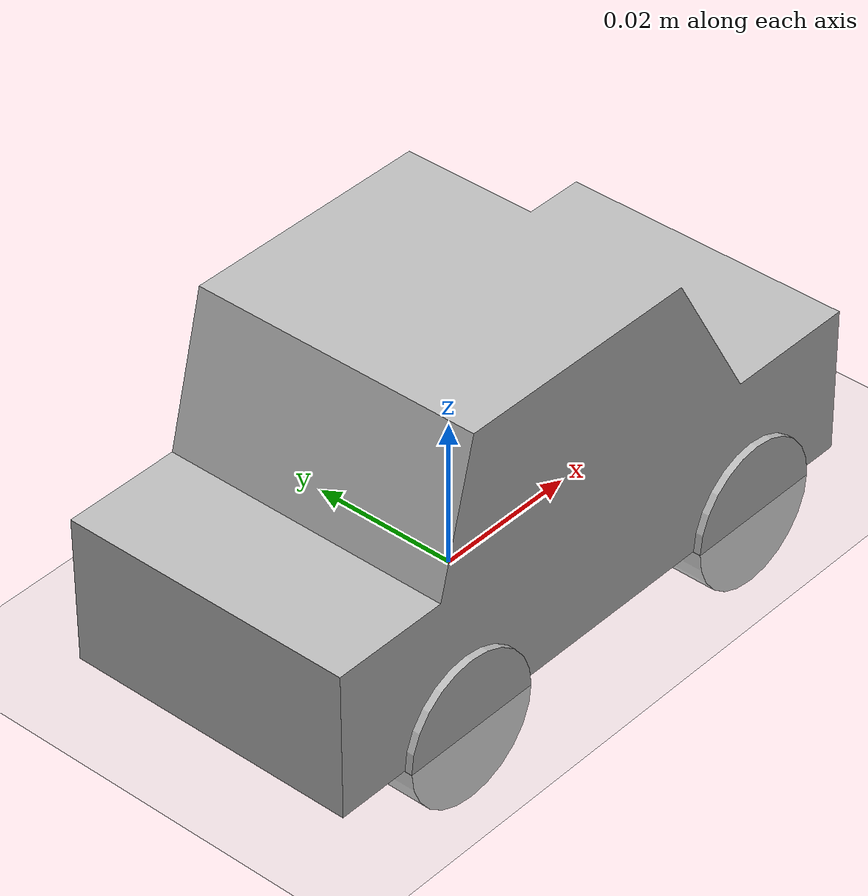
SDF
<?xml version="1.0" ?>

<!-- world檔由sdf檔所定義 -->
<sdf version="1.4">

  <world name="default">

    <!-- 地板-->
    <include>
      <uri>model://ground_plane</uri>
    </include>

    <!-- 光線-->
    <include>
      <uri>model://sun</uri>
    </include>

    <!-- 定義視角從上往下，pose是 x y z roll pitch yaw -->

    <gui fullscreen='0'>
      <camera name='user_camera'>
        <pose>0 0 7 0 1.570796 1.570796</pose>
        <view_controller>orbit</view_controller>
      </camera>
    </gui>

    <model name="carcar">
      <link name="body_link">
        <pose>0 0 0 0 0 0</pose>
        <visual name="body_visual">
          <geometry>
            <mesh><uri>file://PATH/car_body.stl</uri><scale>0.001 0.001 0.001</scale></mesh>
          </geometry>
        </visual>
        <collision name="body_collision">
          <geometry>
            <mesh><uri>file://PATH/car_body.stl</uri><scale>0.001 0.001 0.001</scale></mesh>
          </geometry>
        </collision>

        <inertial>
          <inertia>
            <ixx>1</ixx>
            <ixy>0</ixy>
            <ixz>0</ixz>
            <iyy>1</iyy>
            <iyz>0</iyz>
            <izz>1</izz>
          </inertia>
          <mass>10</mass>
        </inertial>

      </link>

      <link name="left_wheel_link">
        <pose>0.03 0.016 0 0 1.57079632679 1.57079632679</pose>
        <visual name="left_wheel_visual">
          <geometry>
            <cylinder>
              <radius>0.01</radius>
              <length>0.01</length>
            </cylinder>
          </geometry>
        </visual>
        <collision name="left_wheel_collision">
          <geometry>
            <cylinder>
              <radius>0.01</radius>
              <length>0.01</length>
            </cylinder>
          </geometry>
        </collision>

        <surface>
          <friction>
            <ode>
              <mu>1.0</mu>
              <mu2>1.0</mu2>
            </ode>
          </friction>
        </surface>

        <inertial>
          <inertia>
            <ixx>0</ixx>
            <ixy>0</ixy>
            <ixz>0</ixz>
            <iyy>1</iyy>
            <iyz>0</iyz>
            <izz>0</izz>
          </inertia>
          <mass>10</mass>
        </inertial>
      </link>

      <link name="right_wheel_link">
        <pose>0.03 -0.016 0 0 1.57079632679 1.57079632679</pose>
        <visual name="right_wheel_visual">
          <geometry>
            <cylinder>
              <radius>0.01</radius>
              <length>0.01</length>
            </cylinder>
          </geometry>
        </visual>
        <collision name="right_wheel_collision">
          <geometry>
            <cylinder>
              <radius>0.01</radius>
              <length>0.01</length>
            </cylinder>
          </geometry>
        </collision>

        <surface>
          <friction>
            <ode>
              <mu>1.0</mu>
              <mu2>1.0</mu2>
            </ode>
          </friction>
        </surface>

        <inertial>
          <inertia>
            <ixx>0</ixx>
            <ixy>0</ixy>
            <ixz>0</ixz>
            <iyy>1</iyy>
            <iyz>0</iyz>
            <izz>0</izz>
          </inertia>
          <mass>10</mass>
        </inertial>
      </link>

      <link name="left_wheel_back_link">
        <pose>-0.02 0.016 0 0 1.57079632679 1.57079632679</pose>
        <visual name="left_wheel_back_visual">
          <geometry>
            <cylinder>
              <radius>0.01</radius>
              <length>0.01</length>
            </cylinder>
          </geometry>
        </visual>
        <collision name="left_wheel_back_collision">
          <geometry>
            <cylinder>
              <radius>0.01</radius>
              <length>0.01</length>
            </cylinder>
          </geometry>
        </collision>
        <surface>
          <friction>
            <ode>
              <mu>1.0</mu>
              <mu2>1.0</mu2>
            </ode>
          </friction>
        </surface>

        <inertial>
          <inertia>
            <ixx>0</ixx>
            <ixy>0</ixy>
            <ixz>0</ixz>
            <iyy>1</iyy>
            <iyz>0</iyz>
            <izz>0</izz>
          </inertia>
          <mass>10</mass>
        </inertial>
      </link>

      <link name="right_wheel_back_link">
        <pose>-0.02 -0.016 0 0 1.57079632679 1.57079632679</pose>
        <visual name="right_wheel_back_visual">
          <geometry>
            <cylinder>
              <radius>0.01</radius>
              <length>0.01</length>
            </cylinder>
          </geometry>
        </visual>
        <collision name="right_wheel_back_collision">
          <geometry>
            <cylinder>
              <radius>0.01</radius>
              <length>0.01</length>
            </cylinder>
          </geometry>
        </collision>

        <surface>
          <friction>
            <ode>
              <mu>1.0</mu>
              <mu2>1.0</mu2>
            </ode>
          </friction>
        </surface>

        <inertial>
          <inertia>
            <ixx>0</ixx>
            <ixy>0</ixy>
            <ixz>0</ixz>
            <iyy>1</iyy>
            <iyz>0</iyz>
            <izz>0</izz>
          </inertia>
          <mass>10</mass>
        </inertial>
      </link>

      <joint name="robot_car_left_wheel_joint" type="revolute">
        <pose>0 0 0 0 0 0</pose>
        <axis>
          <xyz>0 1 0</xyz>
        </axis>
        <parent>body_link</parent>
        <child>left_wheel_link</child>
      </joint>

      <joint name="robot_car_right_wheel_joint" type="revolute">
        <pose>0 0 0 0 0 0</pose>
        <axis>
          <xyz>0 1 0</xyz>
        </axis>
        <parent>body_link</parent>
        <child>right_wheel_link</child>
      </joint>

      <joint name="robot_car_left_wheel_back_joint" type="revolute">
        <pose>0 0 0 0 0 0</pose>
        <axis>
          <xyz>0 1 0</xyz>
        </axis>
        <parent>body_link</parent>
        <child>left_wheel_back_link</child>
      </joint>

      <joint name="robot_car_right_wheel_back_joint" type="revolute">
        <pose>0 0 0 0 0 0</pose>
        <axis>
          <xyz>0 1 0</xyz>
        </axis>
        <parent>body_link</parent>
        <child>right_wheel_back_link</child>
      </joint>

    </model>

  </world>
</sdf>
